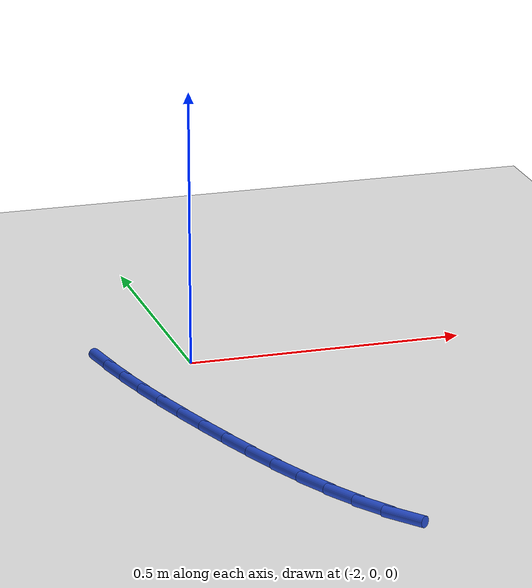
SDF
<sdf version="1.6">
 <world name="default">
  <model name="ground_plane">
   <static>1</static>
   <link name="link">
    <collision name="collision">
     <geometry><plane><normal>0 0 1</normal><size>100 100</size></plane></geometry>
     <surface><friction><ode><mu>100</mu><mu2>50</mu2></ode></friction></surface>
    </collision>
    <visual name="visual">
     <cast_shadows>0</cast_shadows>
     <geometry><plane><normal>0 0 1</normal><size>100 100</size></plane></geometry>
     <material>
      <script><uri>file://media/materials/scripts/gazebo.material</uri><name>Gazebo/WhiteGlow</name></script>
     </material>
    </visual>
   </link>
  </model>
  <model name="line">
   <link name="link_57">
    <pose>-2.152882062248023 0.03290226813507968 0.01 0 1.57 -1.4029413888742654</pose>
    <collision name="collision">
     <geometry><cylinder><radius>0.01</radius><length>0.08</length></cylinder></geometry>
    </collision>
    <visual name="visual">
     <material>
      <script><name>Gazebo/Blue</name><uri>file://media/materials/scripts/gazebo.material</uri></script>
     </material>
     <geometry><cylinder><radius>0.01</radius><length>0.08</length></cylinder></geometry>
    </visual>
   </link>
   <link name="link_58">
    <pose>-2.141890913883845 -0.03196164265517559 0.01 0 1.57 -1.370830591702151</pose>
    <collision name="collision">
     <geometry><cylinder><radius>0.01</radius><length>0.08</length></cylinder></geometry>
    </collision>
    <visual name="visual">
     <material>
      <script><name>Gazebo/Blue</name><uri>file://media/materials/scripts/gazebo.material</uri></script>
     </material>
     <geometry><cylinder><radius>0.01</radius><length>0.08</length></cylinder></geometry>
    </visual>
   </link>
   <link name="link_59">
    <pose>-2.12857900681032 -0.09764290044148233 0.01 0 1.57 -1.3432931634601806</pose>
    <collision name="collision">
     <geometry><cylinder><radius>0.01</radius><length>0.08</length></cylinder></geometry>
    </collision>
    <visual name="visual">
     <material>
      <script><name>Gazebo/Blue</name><uri>file://media/materials/scripts/gazebo.material</uri></script>
     </material>
     <geometry><cylinder><radius>0.01</radius><length>0.08</length></cylinder></geometry>
    </visual>
   </link>
   <link name="link_60">
    <pose>-2.1131988622456754 -0.1640766032033779 0.01 0 1.57 -1.3199993565848414</pose>
    <collision name="collision">
     <geometry><cylinder><radius>0.01</radius><length>0.08</length></cylinder></geometry>
    </collision>
    <visual name="visual">
     <material>
      <script><name>Gazebo/Blue</name><uri>file://media/materials/scripts/gazebo.material</uri></script>
     </material>
     <geometry><cylinder><radius>0.01</radius><length>0.08</length></cylinder></geometry>
    </visual>
   </link>
   <link name="link_61">
    <pose>-2.0960030014081363 -0.23119784892040302 0.01 0 1.57 -1.3006539531893297</pose>
    <collision name="collision">
     <geometry><cylinder><radius>0.01</radius><length>0.08</length></cylinder></geometry>
    </collision>
    <visual name="visual">
     <material>
      <script><name>Gazebo/Blue</name><uri>file://media/materials/scripts/gazebo.material</uri></script>
     </material>
     <geometry><cylinder><radius>0.01</radius><length>0.08</length></cylinder></geometry>
    </visual>
   </link>
   <link name="link_62">
    <pose>-2.0772439455159306 -0.298941735572095 0.01 0 1.57 -1.285000714251483</pose>
    <collision name="collision">
     <geometry><cylinder><radius>0.01</radius><length>0.08</length></cylinder></geometry>
    </collision>
    <visual name="visual">
     <material>
      <script><name>Gazebo/Blue</name><uri>file://media/materials/scripts/gazebo.material</uri></script>
     </material>
     <geometry><cylinder><radius>0.01</radius><length>0.08</length></cylinder></geometry>
    </visual>
   </link>
   <link name="link_63">
    <pose>-2.057174215787283 -0.36724336113799455 0.01 0 1.57 -1.2712051212163862</pose>
    <collision name="collision">
     <geometry><cylinder><radius>0.01</radius><length>0.08</length></cylinder></geometry>
    </collision>
    <visual name="visual">
     <material>
      <script><name>Gazebo/Blue</name><uri>file://media/materials/scripts/gazebo.material</uri></script>
     </material>
     <geometry><cylinder><radius>0.01</radius><length>0.08</length></cylinder></geometry>
    </visual>
   </link>
   <link name="link_64">
    <pose>-2.0359601640009513 -0.43592205593585887 0.01 0 1.57 -1.252120616773792</pose>
    <collision name="collision">
     <geometry><cylinder><radius>0.01</radius><length>0.08</length></cylinder></geometry>
    </collision>
    <visual name="visual">
     <material>
      <script><name>Gazebo/Blue</name><uri>file://media/materials/scripts/gazebo.material</uri></script>
     </material>
     <geometry><cylinder><radius>0.01</radius><length>0.08</length></cylinder></geometry>
    </visual>
   </link>
   <link name="link_65">
    <pose>-2.0134000326577755 -0.5043025996556798 0.01 0 1.57 -1.2254092288414367</pose>
    <collision name="collision">
     <geometry><cylinder><radius>0.01</radius><length>0.08</length></cylinder></geometry>
    </collision>
    <visual name="visual">
     <material>
      <script><name>Gazebo/Blue</name><uri>file://media/materials/scripts/gazebo.material</uri></script>
     </material>
     <geometry><cylinder><radius>0.01</radius><length>0.08</length></cylinder></geometry>
    </visual>
   </link>
   <link name="link_66">
    <pose>-1.9891937862493767 -0.57157773659994 0.01 0 1.57 -1.1901922399918172</pose>
    <collision name="collision">
     <geometry><cylinder><radius>0.01</radius><length>0.08</length></cylinder></geometry>
    </collision>
    <visual name="visual">
     <material>
      <script><name>Gazebo/Blue</name><uri>file://media/materials/scripts/gazebo.material</uri></script>
     </material>
     <geometry><cylinder><radius>0.01</radius><length>0.08</length></cylinder></geometry>
    </visual>
   </link>
   <link name="link_67">
    <pose>-1.963041388297802 -0.6369402097685086 0.01 0 1.57 -1.1451655306416075</pose>
    <collision name="collision">
     <geometry><cylinder><radius>0.01</radius><length>0.08</length></cylinder></geometry>
    </collision>
    <visual name="visual">
     <material>
      <script><name>Gazebo/Blue</name><uri>file://media/materials/scripts/gazebo.material</uri></script>
     </material>
     <geometry><cylinder><radius>0.01</radius><length>0.08</length></cylinder></geometry>
    </visual>
   </link>
   <link name="link_68">
    <pose>-1.934642802325099 -0.6995827621612579 0.01 0 1.57 -1.0885536706620573</pose>
    <collision name="collision">
     <geometry><cylinder><radius>0.01</radius><length>0.08</length></cylinder></geometry>
    </collision>
    <visual name="visual">
     <material>
      <script><name>Gazebo/Blue</name><uri>file://media/materials/scripts/gazebo.material</uri></script>
     </material>
     <geometry><cylinder><radius>0.01</radius><length>0.08</length></cylinder></geometry>
    </visual>
   </link>
   <link name="link_69">
    <pose>-1.9036979918533155 -0.7586981367780576 0.01 0 1.57 -1.0180864536919212</pose>
    <collision name="collision">
     <geometry><cylinder><radius>0.01</radius><length>0.08</length></cylinder></geometry>
    </collision>
    <visual name="visual">
     <material>
      <script><name>Gazebo/Blue</name><uri>file://media/materials/scripts/gazebo.material</uri></script>
     </material>
     <geometry><cylinder><radius>0.01</radius><length>0.08</length></cylinder></geometry>
    </visual>
   </link>
   <link name="link_70">
    <pose>-1.8699069204044974 -0.8134790766187797 0.01 0 1.57 -0.9310714937477889</pose>
    <collision name="collision">
     <geometry><cylinder><radius>0.01</radius><length>0.08</length></cylinder></geometry>
    </collision>
    <visual name="visual">
     <material>
      <script><name>Gazebo/Blue</name><uri>file://media/materials/scripts/gazebo.material</uri></script>
     </material>
     <geometry><cylinder><radius>0.01</radius><length>0.08</length></cylinder></geometry>
    </visual>
   </link>
  </model>
 </world>
</sdf>
